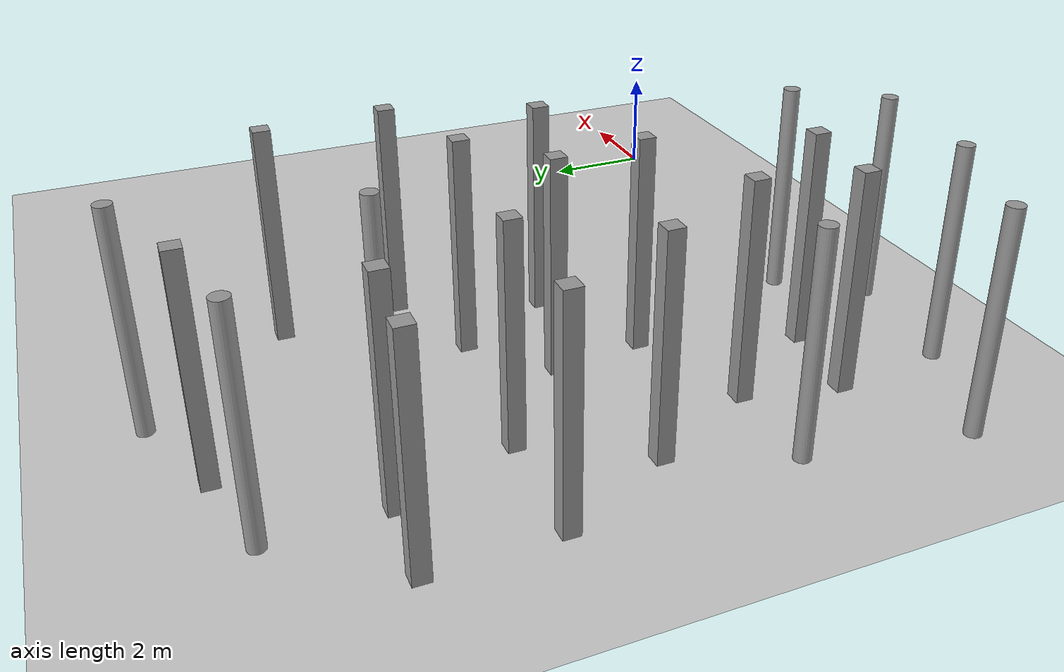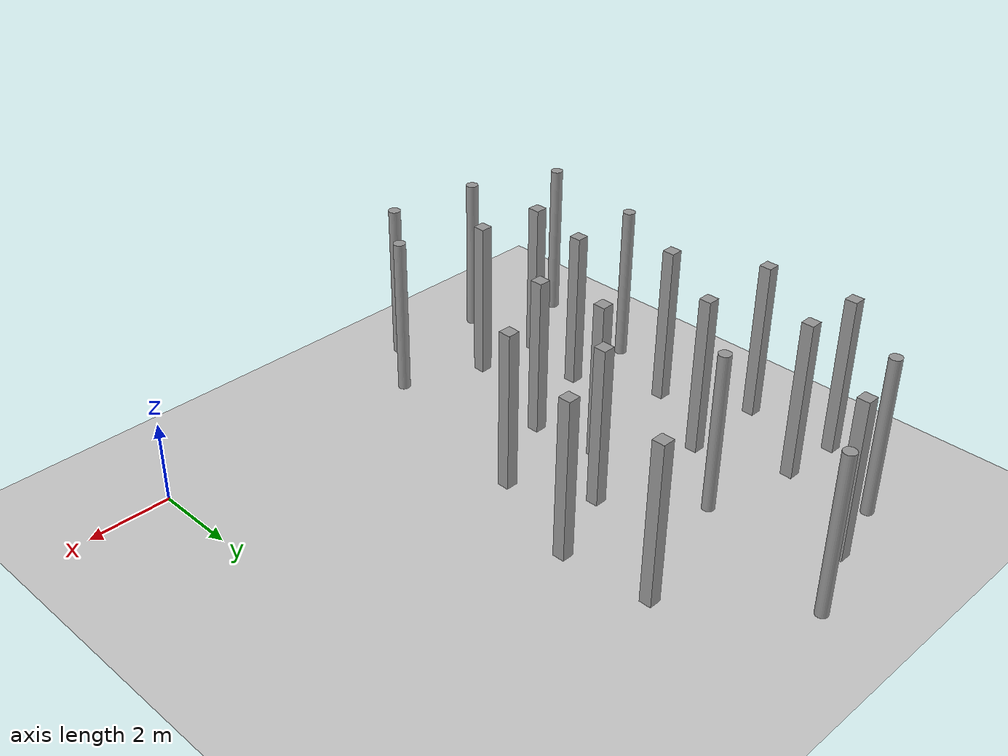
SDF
<sdf version="1.6">
 <world name="default">
  <model name="ground_plane">
   <static>1</static>
   <link name="link">
    <collision name="collision">
     <geometry><plane><normal>0 0 1</normal><size>100 100</size></plane></geometry>
    </collision>
    <visual name="visual">
     <cast_shadows>0</cast_shadows>
     <geometry><plane><normal>0 0 1</normal><size>100 100</size></plane></geometry>
     <material>
      <script><uri>file://media/materials/scripts/gazebo.material</uri><name>Gazebo/Gray</name></script>
     </material>
    </visual>
   </link>
  </model>
  <model name="unit_box_clone_3">
   <link name="link">
    <inertial>
     <mass>1000</mass>
     <inertia><ixx>166.667</ixx><ixy>0</ixy><ixz>0</ixz><iyy>166.667</iyy><iyz>0</iyz><izz>166.667</izz></inertia>
    </inertial>
    <visual name="visual">
     <geometry><box><size>0.3 0.3 4</size></box></geometry>
     <material>
      <script><name>Gazebo/Grey</name><uri>file://media/materials/scripts/gazebo.material</uri></script>
      <shader type="vertex"><normal_map>__default__</normal_map></shader>
      <ambient>0.3 0.3 0.3 1</ambient>
      <diffuse>0.7 0.7 0.7 1</diffuse>
      <specular>0.01 0.01 0.01 1</specular>
      <emissive>0 0 0 1</emissive>
     </material>
    </visual>
    <collision name="collision">
     <geometry><box><size>0.3 0.3 4</size></box></geometry>
     <surface>
      <friction>
       <ode><mu>1</mu><mu2>1</mu2><fdir1>0 0 0</fdir1><slip1>0</slip1><slip2>0</slip2></ode>
       <torsional>
        <coefficient>1</coefficient>
        <patch_radius>0</patch_radius>
        <surface_radius>0</surface_radius>
        <use_patch_radius>1</use_patch_radius>
        <ode><slip>0</slip></ode>
       </torsional>
      </friction>
      <bounce><restitution_coefficient>0</restitution_coefficient><threshold>1e+06</threshold></bounce>
      <contact>
       <collide_without_contact>0</collide_without_contact>
       <collide_without_contact_bitmask>1</collide_without_contact_bitmask>
       <collide_bitmask>1</collide_bitmask>
       <ode>
        <soft_cfm>0</soft_cfm>
        <soft_erp>0.2</soft_erp>
        <kp>1e+13</kp>
        <kd>1</kd>
        <max_vel>0.01</max_vel>
        <min_depth>0</min_depth>
       </ode>
       <bullet>
        <split_impulse>1</split_impulse>
        <split_impulse_penetration_threshold>-0.01</split_impulse_penetration_threshold>
        <soft_cfm>0</soft_cfm>
        <soft_erp>0.2</soft_erp>
        <kp>1e+13</kp>
        <kd>1</kd>
       </bullet>
      </contact>
     </surface>
    </collision>
   </link>
   <static>0</static>
   <pose>-9.81575 6.97351 2.00001 4.7e-05 5.2e-05 -0.001996</pose>
  </model>
  <model name="unit_box_clone_4">
   <link name="link">
    <inertial>
     <mass>1000</mass>
     <inertia><ixx>166.667</ixx><ixy>0</ixy><ixz>0</ixz><iyy>166.667</iyy><iyz>0</iyz><izz>166.667</izz></inertia>
    </inertial>
    <visual name="visual">
     <geometry><box><size>0.3 0.3 4</size></box></geometry>
     <material>
      <script><name>Gazebo/Grey</name><uri>file://media/materials/scripts/gazebo.material</uri></script>
      <shader type="vertex"><normal_map>__default__</normal_map></shader>
      <ambient>0.3 0.3 0.3 1</ambient>
      <diffuse>0.7 0.7 0.7 1</diffuse>
      <specular>0.01 0.01 0.01 1</specular>
      <emissive>0 0 0 1</emissive>
     </material>
    </visual>
    <collision name="collision">
     <geometry><box><size>0.3 0.3 4</size></box></geometry>
     <surface>
      <friction>
       <ode><mu>1</mu><mu2>1</mu2><fdir1>0 0 0</fdir1><slip1>0</slip1><slip2>0</slip2></ode>
       <torsional>
        <coefficient>1</coefficient>
        <patch_radius>0</patch_radius>
        <surface_radius>0</surface_radius>
        <use_patch_radius>1</use_patch_radius>
        <ode><slip>0</slip></ode>
       </torsional>
      </friction>
      <bounce><restitution_coefficient>0</restitution_coefficient><threshold>1e+06</threshold></bounce>
      <contact>
       <collide_without_contact>0</collide_without_contact>
       <collide_without_contact_bitmask>1</collide_without_contact_bitmask>
       <collide_bitmask>1</collide_bitmask>
       <ode>
        <soft_cfm>0</soft_cfm>
        <soft_erp>0.2</soft_erp>
        <kp>1e+13</kp>
        <kd>1</kd>
        <max_vel>0.01</max_vel>
        <min_depth>0</min_depth>
       </ode>
       <bullet>
        <split_impulse>1</split_impulse>
        <split_impulse_penetration_threshold>-0.01</split_impulse_penetration_threshold>
        <soft_cfm>0</soft_cfm>
        <soft_erp>0.2</soft_erp>
        <kp>1e+13</kp>
        <kd>1</kd>
       </bullet>
      </contact>
     </surface>
    </collision>
   </link>
   <static>0</static>
   <pose>-12.0641 9.20916 2.00001 -2e-06 -4.1e-05 -0.0015</pose>
  </model>
  <model name="unit_box_clone_8">
   <link name="link">
    <inertial>
     <mass>1000</mass>
     <inertia><ixx>166.667</ixx><ixy>0</ixy><ixz>0</ixz><iyy>166.667</iyy><iyz>0</iyz><izz>166.667</izz></inertia>
    </inertial>
    <visual name="visual">
     <geometry><box><size>0.3 0.3 4</size></box></geometry>
     <material>
      <script><name>Gazebo/Grey</name><uri>file://media/materials/scripts/gazebo.material</uri></script>
      <shader type="vertex"><normal_map>__default__</normal_map></shader>
      <ambient>0.3 0.3 0.3 1</ambient>
      <diffuse>0.7 0.7 0.7 1</diffuse>
      <specular>0.01 0.01 0.01 1</specular>
      <emissive>0 0 0 1</emissive>
     </material>
    </visual>
    <collision name="collision">
     <geometry><box><size>0.3 0.3 4</size></box></geometry>
     <surface>
      <friction>
       <ode><mu>1</mu><mu2>1</mu2><fdir1>0 0 0</fdir1><slip1>0</slip1><slip2>0</slip2></ode>
       <torsional>
        <coefficient>1</coefficient>
        <patch_radius>0</patch_radius>
        <surface_radius>0</surface_radius>
        <use_patch_radius>1</use_patch_radius>
        <ode><slip>0</slip></ode>
       </torsional>
      </friction>
      <bounce><restitution_coefficient>0</restitution_coefficient><threshold>1e+06</threshold></bounce>
      <contact>
       <collide_without_contact>0</collide_without_contact>
       <collide_without_contact_bitmask>1</collide_without_contact_bitmask>
       <collide_bitmask>1</collide_bitmask>
       <ode>
        <soft_cfm>0</soft_cfm>
        <soft_erp>0.2</soft_erp>
        <kp>1e+13</kp>
        <kd>1</kd>
        <max_vel>0.01</max_vel>
        <min_depth>0</min_depth>
       </ode>
       <bullet>
        <split_impulse>1</split_impulse>
        <split_impulse_penetration_threshold>-0.01</split_impulse_penetration_threshold>
        <soft_cfm>0</soft_cfm>
        <soft_erp>0.2</soft_erp>
        <kp>1e+13</kp>
        <kd>1</kd>
       </bullet>
      </contact>
     </surface>
    </collision>
   </link>
   <static>0</static>
   <pose>-6.68892 6.67579 2 -8e-06 -1.6e-05 -0.000352</pose>
  </model>
  <model name="unit_box_clone_9">
   <link name="link">
    <inertial>
     <mass>1000</mass>
     <inertia><ixx>166.667</ixx><ixy>0</ixy><ixz>0</ixz><iyy>166.667</iyy><iyz>0</iyz><izz>166.667</izz></inertia>
    </inertial>
    <visual name="visual">
     <geometry><box><size>0.3 0.3 4</size></box></geometry>
     <material>
      <script><name>Gazebo/Grey</name><uri>file://media/materials/scripts/gazebo.material</uri></script>
      <shader type="vertex"><normal_map>__default__</normal_map></shader>
      <ambient>0.3 0.3 0.3 1</ambient>
      <diffuse>0.7 0.7 0.7 1</diffuse>
      <specular>0.01 0.01 0.01 1</specular>
      <emissive>0 0 0 1</emissive>
     </material>
    </visual>
    <collision name="collision">
     <geometry><box><size>0.3 0.3 4</size></box></geometry>
     <surface>
      <friction>
       <ode><mu>1</mu><mu2>1</mu2><fdir1>0 0 0</fdir1><slip1>0</slip1><slip2>0</slip2></ode>
       <torsional>
        <coefficient>1</coefficient>
        <patch_radius>0</patch_radius>
        <surface_radius>0</surface_radius>
        <use_patch_radius>1</use_patch_radius>
        <ode><slip>0</slip></ode>
       </torsional>
      </friction>
      <bounce><restitution_coefficient>0</restitution_coefficient><threshold>1e+06</threshold></bounce>
      <contact>
       <collide_without_contact>0</collide_without_contact>
       <collide_without_contact_bitmask>1</collide_without_contact_bitmask>
       <collide_bitmask>1</collide_bitmask>
       <ode>
        <soft_cfm>0</soft_cfm>
        <soft_erp>0.2</soft_erp>
        <kp>1e+13</kp>
        <kd>1</kd>
        <max_vel>0.01</max_vel>
        <min_depth>0</min_depth>
       </ode>
       <bullet>
        <split_impulse>1</split_impulse>
        <split_impulse_penetration_threshold>-0.01</split_impulse_penetration_threshold>
        <soft_cfm>0</soft_cfm>
        <soft_erp>0.2</soft_erp>
        <kp>1e+13</kp>
        <kd>1</kd>
       </bullet>
      </contact>
     </surface>
    </collision>
   </link>
   <static>0</static>
   <pose>-8.00889 5.50015 2 0 -0 -0.003801</pose>
  </model>
  <model name="unit_box_clone_10">
   <link name="link">
    <inertial>
     <mass>1000</mass>
     <inertia><ixx>166.667</ixx><ixy>0</ixy><ixz>0</ixz><iyy>166.667</iyy><iyz>0</iyz><izz>166.667</izz></inertia>
    </inertial>
    <visual name="visual">
     <geometry><box><size>0.3 0.3 4</size></box></geometry>
     <material>
      <script><name>Gazebo/Grey</name><uri>file://media/materials/scripts/gazebo.material</uri></script>
      <shader type="vertex"><normal_map>__default__</normal_map></shader>
      <ambient>0.3 0.3 0.3 1</ambient>
      <diffuse>0.7 0.7 0.7 1</diffuse>
      <specular>0.01 0.01 0.01 1</specular>
      <emissive>0 0 0 1</emissive>
     </material>
    </visual>
    <collision name="collision">
     <geometry><box><size>0.3 0.3 4</size></box></geometry>
     <surface>
      <friction>
       <ode><mu>1</mu><mu2>1</mu2><fdir1>0 0 0</fdir1><slip1>0</slip1><slip2>0</slip2></ode>
       <torsional>
        <coefficient>1</coefficient>
        <patch_radius>0</patch_radius>
        <surface_radius>0</surface_radius>
        <use_patch_radius>1</use_patch_radius>
        <ode><slip>0</slip></ode>
       </torsional>
      </friction>
      <bounce><restitution_coefficient>0</restitution_coefficient><threshold>1e+06</threshold></bounce>
      <contact>
       <collide_without_contact>0</collide_without_contact>
       <collide_without_contact_bitmask>1</collide_without_contact_bitmask>
       <collide_bitmask>1</collide_bitmask>
       <ode>
        <soft_cfm>0</soft_cfm>
        <soft_erp>0.2</soft_erp>
        <kp>1e+13</kp>
        <kd>1</kd>
        <max_vel>0.01</max_vel>
        <min_depth>0</min_depth>
       </ode>
       <bullet>
        <split_impulse>1</split_impulse>
        <split_impulse_penetration_threshold>-0.01</split_impulse_penetration_threshold>
        <soft_cfm>0</soft_cfm>
        <soft_erp>0.2</soft_erp>
        <kp>1e+13</kp>
        <kd>1</kd>
       </bullet>
      </contact>
     </surface>
    </collision>
   </link>
   <static>0</static>
   <pose>-8.91735 11.4995 2 3e-06 1e-06 -0.003851</pose>
  </model>
  <model name="unit_box_clone_11">
   <link name="link">
    <inertial>
     <mass>1000</mass>
     <inertia><ixx>166.667</ixx><ixy>0</ixy><ixz>0</ixz><iyy>166.667</iyy><iyz>0</iyz><izz>166.667</izz></inertia>
    </inertial>
    <visual name="visual">
     <geometry><box><size>0.3 0.3 4</size></box></geometry>
     <material>
      <script><name>Gazebo/Grey</name><uri>file://media/materials/scripts/gazebo.material</uri></script>
      <shader type="vertex"><normal_map>__default__</normal_map></shader>
      <ambient>0.3 0.3 0.3 1</ambient>
      <diffuse>0.7 0.7 0.7 1</diffuse>
      <specular>0.01 0.01 0.01 1</specular>
      <emissive>0 0 0 1</emissive>
     </material>
    </visual>
    <collision name="collision">
     <geometry><box><size>0.3 0.3 4</size></box></geometry>
     <surface>
      <friction>
       <ode><mu>1</mu><mu2>1</mu2><fdir1>0 0 0</fdir1><slip1>0</slip1><slip2>0</slip2></ode>
       <torsional>
        <coefficient>1</coefficient>
        <patch_radius>0</patch_radius>
        <surface_radius>0</surface_radius>
        <use_patch_radius>1</use_patch_radius>
        <ode><slip>0</slip></ode>
       </torsional>
      </friction>
      <bounce><restitution_coefficient>0</restitution_coefficient><threshold>1e+06</threshold></bounce>
      <contact>
       <collide_without_contact>0</collide_without_contact>
       <collide_without_contact_bitmask>1</collide_without_contact_bitmask>
       <collide_bitmask>1</collide_bitmask>
       <ode>
        <soft_cfm>0</soft_cfm>
        <soft_erp>0.2</soft_erp>
        <kp>1e+13</kp>
        <kd>1</kd>
        <max_vel>0.01</max_vel>
        <min_depth>0</min_depth>
       </ode>
       <bullet>
        <split_impulse>1</split_impulse>
        <split_impulse_penetration_threshold>-0.01</split_impulse_penetration_threshold>
        <soft_cfm>0</soft_cfm>
        <soft_erp>0.2</soft_erp>
        <kp>1e+13</kp>
        <kd>1</kd>
       </bullet>
      </contact>
     </surface>
    </collision>
   </link>
   <static>0</static>
   <pose>-10.559 9.10965 2 0 5e-06 0.004017</pose>
  </model>
  <model name="unit_box_clone_13">
   <link name="link">
    <inertial>
     <mass>1000</mass>
     <inertia><ixx>166.667</ixx><ixy>0</ixy><ixz>0</ixz><iyy>166.667</iyy><iyz>0</iyz><izz>166.667</izz></inertia>
    </inertial>
    <visual name="visual">
     <geometry><box><size>0.3 0.3 4</size></box></geometry>
     <material>
      <script><name>Gazebo/Grey</name><uri>file://media/materials/scripts/gazebo.material</uri></script>
      <shader type="vertex"><normal_map>__default__</normal_map></shader>
      <ambient>0.3 0.3 0.3 1</ambient>
      <diffuse>0.7 0.7 0.7 1</diffuse>
      <specular>0.01 0.01 0.01 1</specular>
      <emissive>0 0 0 1</emissive>
     </material>
    </visual>
    <collision name="collision">
     <geometry><box><size>0.3 0.3 4</size></box></geometry>
     <surface>
      <friction>
       <ode><mu>1</mu><mu2>1</mu2><fdir1>0 0 0</fdir1><slip1>0</slip1><slip2>0</slip2></ode>
       <torsional>
        <coefficient>1</coefficient>
        <patch_radius>0</patch_radius>
        <surface_radius>0</surface_radius>
        <use_patch_radius>1</use_patch_radius>
        <ode><slip>0</slip></ode>
       </torsional>
      </friction>
      <bounce><restitution_coefficient>0</restitution_coefficient><threshold>1e+06</threshold></bounce>
      <contact>
       <collide_without_contact>0</collide_without_contact>
       <collide_without_contact_bitmask>1</collide_without_contact_bitmask>
       <collide_bitmask>1</collide_bitmask>
       <ode>
        <soft_cfm>0</soft_cfm>
        <soft_erp>0.2</soft_erp>
        <kp>1e+13</kp>
        <kd>1</kd>
        <max_vel>0.01</max_vel>
        <min_depth>0</min_depth>
       </ode>
       <bullet>
        <split_impulse>1</split_impulse>
        <split_impulse_penetration_threshold>-0.01</split_impulse_penetration_threshold>
        <soft_cfm>0</soft_cfm>
        <soft_erp>0.2</soft_erp>
        <kp>1e+13</kp>
        <kd>1</kd>
       </bullet>
      </contact>
     </surface>
    </collision>
   </link>
   <static>0</static>
   <pose>-10.0001 3.0001 2 -5e-06 5e-06 -0.001679</pose>
  </model>
  <model name="unit_box_clone_14">
   <link name="link">
    <inertial>
     <mass>1000</mass>
     <inertia><ixx>166.667</ixx><ixy>0</ixy><ixz>0</ixz><iyy>166.667</iyy><iyz>0</iyz><izz>166.667</izz></inertia>
    </inertial>
    <visual name="visual">
     <geometry><box><size>0.3 0.3 4</size></box></geometry>
     <material>
      <script><name>Gazebo/Grey</name><uri>file://media/materials/scripts/gazebo.material</uri></script>
      <shader type="vertex"><normal_map>__default__</normal_map></shader>
      <ambient>0.3 0.3 0.3 1</ambient>
      <diffuse>0.7 0.7 0.7 1</diffuse>
      <specular>0.01 0.01 0.01 1</specular>
      <emissive>0 0 0 1</emissive>
     </material>
    </visual>
    <collision name="collision">
     <geometry><box><size>0.3 0.3 4</size></box></geometry>
     <surface>
      <friction>
       <ode><mu>1</mu><mu2>1</mu2><fdir1>0 0 0</fdir1><slip1>0</slip1><slip2>0</slip2></ode>
       <torsional>
        <coefficient>1</coefficient>
        <patch_radius>0</patch_radius>
        <surface_radius>0</surface_radius>
        <use_patch_radius>1</use_patch_radius>
        <ode><slip>0</slip></ode>
       </torsional>
      </friction>
      <bounce><restitution_coefficient>0</restitution_coefficient><threshold>1e+06</threshold></bounce>
      <contact>
       <collide_without_contact>0</collide_without_contact>
       <collide_without_contact_bitmask>1</collide_without_contact_bitmask>
       <collide_bitmask>1</collide_bitmask>
       <ode>
        <soft_cfm>0</soft_cfm>
        <soft_erp>0.2</soft_erp>
        <kp>1e+13</kp>
        <kd>1</kd>
        <max_vel>0.01</max_vel>
        <min_depth>0</min_depth>
       </ode>
       <bullet>
        <split_impulse>1</split_impulse>
        <split_impulse_penetration_threshold>-0.01</split_impulse_penetration_threshold>
        <soft_cfm>0</soft_cfm>
        <soft_erp>0.2</soft_erp>
        <kp>1e+13</kp>
        <kd>1</kd>
       </bullet>
      </contact>
     </surface>
    </collision>
   </link>
   <static>0</static>
   <pose>-12 7.00014 2.00001 -1.8e-05 -3.9e-05 0.000878</pose>
  </model>
  <model name="unit_box_clone_15">
   <link name="link">
    <inertial>
     <mass>1000</mass>
     <inertia><ixx>166.667</ixx><ixy>0</ixy><ixz>0</ixz><iyy>166.667</iyy><iyz>0</iyz><izz>166.667</izz></inertia>
    </inertial>
    <visual name="visual">
     <geometry><box><size>0.3 0.3 4</size></box></geometry>
     <material>
      <script><name>Gazebo/Grey</name><uri>file://media/materials/scripts/gazebo.material</uri></script>
      <shader type="vertex"><normal_map>__default__</normal_map></shader>
      <ambient>0.3 0.3 0.3 1</ambient>
      <diffuse>0.7 0.7 0.7 1</diffuse>
      <specular>0.01 0.01 0.01 1</specular>
      <emissive>0 0 0 1</emissive>
     </material>
    </visual>
    <collision name="collision">
     <geometry><box><size>0.3 0.3 4</size></box></geometry>
     <surface>
      <friction>
       <ode><mu>1</mu><mu2>1</mu2><fdir1>0 0 0</fdir1><slip1>0</slip1><slip2>0</slip2></ode>
       <torsional>
        <coefficient>1</coefficient>
        <patch_radius>0</patch_radius>
        <surface_radius>0</surface_radius>
        <use_patch_radius>1</use_patch_radius>
        <ode><slip>0</slip></ode>
       </torsional>
      </friction>
      <bounce><restitution_coefficient>0</restitution_coefficient><threshold>1e+06</threshold></bounce>
      <contact>
       <collide_without_contact>0</collide_without_contact>
       <collide_without_contact_bitmask>1</collide_without_contact_bitmask>
       <collide_bitmask>1</collide_bitmask>
       <ode>
        <soft_cfm>0</soft_cfm>
        <soft_erp>0.2</soft_erp>
        <kp>1e+13</kp>
        <kd>1</kd>
        <max_vel>0.01</max_vel>
        <min_depth>0</min_depth>
       </ode>
       <bullet>
        <split_impulse>1</split_impulse>
        <split_impulse_penetration_threshold>-0.01</split_impulse_penetration_threshold>
        <soft_cfm>0</soft_cfm>
        <soft_erp>0.2</soft_erp>
        <kp>1e+13</kp>
        <kd>1</kd>
       </bullet>
      </contact>
     </surface>
    </collision>
   </link>
   <static>0</static>
   <pose>-8.74152 1.04876 2 -0 -1e-06 0.002214</pose>
  </model>
  <model name="unit_box_clone_16">
   <link name="link">
    <inertial>
     <mass>1000</mass>
     <inertia><ixx>166.667</ixx><ixy>0</ixy><ixz>0</ixz><iyy>166.667</iyy><iyz>0</iyz><izz>166.667</izz></inertia>
    </inertial>
    <visual name="visual">
     <geometry><box><size>0.3 0.3 4</size></box></geometry>
     <material>
      <script><name>Gazebo/Grey</name><uri>file://media/materials/scripts/gazebo.material</uri></script>
      <shader type="vertex"><normal_map>__default__</normal_map></shader>
      <ambient>0.3 0.3 0.3 1</ambient>
      <diffuse>0.7 0.7 0.7 1</diffuse>
      <specular>0.01 0.01 0.01 1</specular>
      <emissive>0 0 0 1</emissive>
     </material>
    </visual>
    <collision name="collision">
     <geometry><box><size>0.3 0.3 4</size></box></geometry>
     <surface>
      <friction>
       <ode><mu>1</mu><mu2>1</mu2><fdir1>0 0 0</fdir1><slip1>0</slip1><slip2>0</slip2></ode>
       <torsional>
        <coefficient>1</coefficient>
        <patch_radius>0</patch_radius>
        <surface_radius>0</surface_radius>
        <use_patch_radius>1</use_patch_radius>
        <ode><slip>0</slip></ode>
       </torsional>
      </friction>
      <bounce><restitution_coefficient>0</restitution_coefficient><threshold>1e+06</threshold></bounce>
      <contact>
       <collide_without_contact>0</collide_without_contact>
       <collide_without_contact_bitmask>1</collide_without_contact_bitmask>
       <collide_bitmask>1</collide_bitmask>
       <ode>
        <soft_cfm>0</soft_cfm>
        <soft_erp>0.2</soft_erp>
        <kp>1e+13</kp>
        <kd>1</kd>
        <max_vel>0.01</max_vel>
        <min_depth>0</min_depth>
       </ode>
       <bullet>
        <split_impulse>1</split_impulse>
        <split_impulse_penetration_threshold>-0.01</split_impulse_penetration_threshold>
        <soft_cfm>0</soft_cfm>
        <soft_erp>0.2</soft_erp>
        <kp>1e+13</kp>
        <kd>1</kd>
       </bullet>
      </contact>
     </surface>
    </collision>
   </link>
   <static>0</static>
   <pose>-11 5.00014 2.00001 -1.8e-05 -3.9e-05 0.000878</pose>
  </model>
  <model name="unit_box_clone_18">
   <link name="link">
    <inertial>
     <mass>1000</mass>
     <inertia><ixx>166.667</ixx><ixy>0</ixy><ixz>0</ixz><iyy>166.667</iyy><iyz>0</iyz><izz>166.667</izz></inertia>
    </inertial>
    <visual name="visual">
     <geometry><box><size>0.3 0.3 4</size></box></geometry>
     <material>
      <script><name>Gazebo/Grey</name><uri>file://media/materials/scripts/gazebo.material</uri></script>
      <shader type="vertex"><normal_map>__default__</normal_map></shader>
      <ambient>0.3 0.3 0.3 1</ambient>
      <diffuse>0.7 0.7 0.7 1</diffuse>
      <specular>0.01 0.01 0.01 1</specular>
      <emissive>0 0 0 1</emissive>
     </material>
    </visual>
    <collision name="collision">
     <geometry><box><size>0.3 0.3 4</size></box></geometry>
     <surface>
      <friction>
       <ode><mu>1</mu><mu2>1</mu2><fdir1>0 0 0</fdir1><slip1>0</slip1><slip2>0</slip2></ode>
       <torsional>
        <coefficient>1</coefficient>
        <patch_radius>0</patch_radius>
        <surface_radius>0</surface_radius>
        <use_patch_radius>1</use_patch_radius>
        <ode><slip>0</slip></ode>
       </torsional>
      </friction>
      <bounce><restitution_coefficient>0</restitution_coefficient><threshold>1e+06</threshold></bounce>
      <contact>
       <collide_without_contact>0</collide_without_contact>
       <collide_without_contact_bitmask>1</collide_without_contact_bitmask>
       <collide_bitmask>1</collide_bitmask>
       <ode>
        <soft_cfm>0</soft_cfm>
        <soft_erp>0.2</soft_erp>
        <kp>1e+13</kp>
        <kd>1</kd>
        <max_vel>0.01</max_vel>
        <min_depth>0</min_depth>
       </ode>
       <bullet>
        <split_impulse>1</split_impulse>
        <split_impulse_penetration_threshold>-0.01</split_impulse_penetration_threshold>
        <soft_cfm>0</soft_cfm>
        <soft_erp>0.2</soft_erp>
        <kp>1e+13</kp>
        <kd>1</kd>
       </bullet>
      </contact>
     </surface>
    </collision>
   </link>
   <static>0</static>
   <pose>-5.73006 4.87583 2 -1.4e-05 -1e-06 0.00022</pose>
  </model>
  <model name="unit_box_clone_23">
   <link name="link">
    <inertial>
     <mass>1000</mass>
     <inertia><ixx>166.667</ixx><ixy>0</ixy><ixz>0</ixz><iyy>166.667</iyy><iyz>0</iyz><izz>166.667</izz></inertia>
    </inertial>
    <visual name="visual">
     <geometry><box><size>0.3 0.3 4</size></box></geometry>
     <material>
      <script><name>Gazebo/Grey</name><uri>file://media/materials/scripts/gazebo.material</uri></script>
      <shader type="vertex"><normal_map>__default__</normal_map></shader>
      <ambient>0.3 0.3 0.3 1</ambient>
      <diffuse>0.7 0.7 0.7 1</diffuse>
      <specular>0.01 0.01 0.01 1</specular>
      <emissive>0 0 0 1</emissive>
     </material>
    </visual>
    <collision name="collision">
     <geometry><box><size>0.3 0.3 4</size></box></geometry>
     <surface>
      <friction>
       <ode><mu>1</mu><mu2>1</mu2><fdir1>0 0 0</fdir1><slip1>0</slip1><slip2>0</slip2></ode>
       <torsional>
        <coefficient>1</coefficient>
        <patch_radius>0</patch_radius>
        <surface_radius>0</surface_radius>
        <use_patch_radius>1</use_patch_radius>
        <ode><slip>0</slip></ode>
       </torsional>
      </friction>
      <bounce><restitution_coefficient>0</restitution_coefficient><threshold>1e+06</threshold></bounce>
      <contact>
       <collide_without_contact>0</collide_without_contact>
       <collide_without_contact_bitmask>1</collide_without_contact_bitmask>
       <collide_bitmask>1</collide_bitmask>
       <ode>
        <soft_cfm>0</soft_cfm>
        <soft_erp>0.2</soft_erp>
        <kp>1e+13</kp>
        <kd>1</kd>
        <max_vel>0.01</max_vel>
        <min_depth>0</min_depth>
       </ode>
       <bullet>
        <split_impulse>1</split_impulse>
        <split_impulse_penetration_threshold>-0.01</split_impulse_penetration_threshold>
        <soft_cfm>0</soft_cfm>
        <soft_erp>0.2</soft_erp>
        <kp>1e+13</kp>
        <kd>1</kd>
       </bullet>
      </contact>
     </surface>
    </collision>
   </link>
   <static>0</static>
   <pose>-5.00227 9.59195 2 0 -2e-06 -0.002832</pose>
  </model>
  <model name="unit_box_clone_24">
   <link name="link">
    <inertial>
     <mass>1000</mass>
     <inertia><ixx>166.667</ixx><ixy>0</ixy><ixz>0</ixz><iyy>166.667</iyy><iyz>0</iyz><izz>166.667</izz></inertia>
    </inertial>
    <visual name="visual">
     <geometry><box><size>0.3 0.3 4</size></box></geometry>
     <material>
      <script><name>Gazebo/Grey</name><uri>file://media/materials/scripts/gazebo.material</uri></script>
      <shader type="vertex"><normal_map>__default__</normal_map></shader>
      <ambient>0.3 0.3 0.3 1</ambient>
      <diffuse>0.7 0.7 0.7 1</diffuse>
      <specular>0.01 0.01 0.01 1</specular>
      <emissive>0 0 0 1</emissive>
     </material>
    </visual>
    <collision name="collision">
     <geometry><box><size>0.3 0.3 4</size></box></geometry>
     <surface>
      <friction>
       <ode><mu>1</mu><mu2>1</mu2><fdir1>0 0 0</fdir1><slip1>0</slip1><slip2>0</slip2></ode>
       <torsional>
        <coefficient>1</coefficient>
        <patch_radius>0</patch_radius>
        <surface_radius>0</surface_radius>
        <use_patch_radius>1</use_patch_radius>
        <ode><slip>0</slip></ode>
       </torsional>
      </friction>
      <bounce><restitution_coefficient>0</restitution_coefficient><threshold>1e+06</threshold></bounce>
      <contact>
       <collide_without_contact>0</collide_without_contact>
       <collide_without_contact_bitmask>1</collide_without_contact_bitmask>
       <collide_bitmask>1</collide_bitmask>
       <ode>
        <soft_cfm>0</soft_cfm>
        <soft_erp>0.2</soft_erp>
        <kp>1e+13</kp>
        <kd>1</kd>
        <max_vel>0.01</max_vel>
        <min_depth>0</min_depth>
       </ode>
       <bullet>
        <split_impulse>1</split_impulse>
        <split_impulse_penetration_threshold>-0.01</split_impulse_penetration_threshold>
        <soft_cfm>0</soft_cfm>
        <soft_erp>0.2</soft_erp>
        <kp>1e+13</kp>
        <kd>1</kd>
       </bullet>
      </contact>
     </surface>
    </collision>
   </link>
   <static>0</static>
   <pose>-4.80948 7.40665 2 2e-06 -1.2e-05 0.001435</pose>
  </model>
  <model name="unit_box_clone_28">
   <link name="link">
    <inertial>
     <mass>1000</mass>
     <inertia><ixx>166.667</ixx><ixy>0</ixy><ixz>0</ixz><iyy>166.667</iyy><iyz>0</iyz><izz>166.667</izz></inertia>
    </inertial>
    <visual name="visual">
     <geometry><box><size>0.3 0.3 4</size></box></geometry>
     <material>
      <script><name>Gazebo/Grey</name><uri>file://media/materials/scripts/gazebo.material</uri></script>
      <shader type="vertex"><normal_map>__default__</normal_map></shader>
      <ambient>0.3 0.3 0.3 1</ambient>
      <diffuse>0.7 0.7 0.7 1</diffuse>
      <specular>0.01 0.01 0.01 1</specular>
      <emissive>0 0 0 1</emissive>
     </material>
    </visual>
    <collision name="collision">
     <geometry><box><size>0.3 0.3 4</size></box></geometry>
     <surface>
      <friction>
       <ode><mu>1</mu><mu2>1</mu2><fdir1>0 0 0</fdir1><slip1>0</slip1><slip2>0</slip2></ode>
       <torsional>
        <coefficient>1</coefficient>
        <patch_radius>0</patch_radius>
        <surface_radius>0</surface_radius>
        <use_patch_radius>1</use_patch_radius>
        <ode><slip>0</slip></ode>
       </torsional>
      </friction>
      <bounce><restitution_coefficient>0</restitution_coefficient><threshold>1e+06</threshold></bounce>
      <contact>
       <collide_without_contact>0</collide_without_contact>
       <collide_without_contact_bitmask>1</collide_without_contact_bitmask>
       <collide_bitmask>1</collide_bitmask>
       <ode>
        <soft_cfm>0</soft_cfm>
        <soft_erp>0.2</soft_erp>
        <kp>1e+13</kp>
        <kd>1</kd>
        <max_vel>0.01</max_vel>
        <min_depth>0</min_depth>
       </ode>
       <bullet>
        <split_impulse>1</split_impulse>
        <split_impulse_penetration_threshold>-0.01</split_impulse_penetration_threshold>
        <soft_cfm>0</soft_cfm>
        <soft_erp>0.2</soft_erp>
        <kp>1e+13</kp>
        <kd>1</kd>
       </bullet>
      </contact>
     </surface>
    </collision>
   </link>
   <static>0</static>
   <pose>-7.80117 3.82478 2 1e-06 7e-06 -0.005516</pose>
  </model>
  <model name="unit_cylinder_clone_1_clone_3">
   <link name="link">
    <inertial>
     <mass>1000</mass>
     <inertia><ixx>145.833</ixx><ixy>0</ixy><ixz>0</ixz><iyy>145.833</iyy><iyz>0</iyz><izz>125</izz></inertia>
    </inertial>
    <visual name="visual">
     <geometry><cylinder><radius>0.15</radius><length>4</length></cylinder></geometry>
     <material>
      <script><name>Gazebo/Grey</name><uri>file://media/materials/scripts/gazebo.material</uri></script>
      <shader type="vertex"><normal_map>__default__</normal_map></shader>
      <ambient>0.3 0.3 0.3 1</ambient>
      <diffuse>0.7 0.7 0.7 1</diffuse>
      <specular>0.01 0.01 0.01 1</specular>
      <emissive>0 0 0 1</emissive>
     </material>
    </visual>
    <collision name="collision">
     <geometry><cylinder><radius>0.15</radius><length>4</length></cylinder></geometry>
     <surface>
      <friction>
       <ode><mu>1</mu><mu2>1</mu2><fdir1>0 0 0</fdir1><slip1>0</slip1><slip2>0</slip2></ode>
       <torsional>
        <coefficient>1</coefficient>
        <patch_radius>0</patch_radius>
        <surface_radius>0</surface_radius>
        <use_patch_radius>1</use_patch_radius>
        <ode><slip>0</slip></ode>
       </torsional>
      </friction>
      <bounce><restitution_coefficient>0</restitution_coefficient><threshold>1e+06</threshold></bounce>
      <contact>
       <collide_without_contact>0</collide_without_contact>
       <collide_without_contact_bitmask>1</collide_without_contact_bitmask>
       <collide_bitmask>1</collide_bitmask>
       <ode>
        <soft_cfm>0</soft_cfm>
        <soft_erp>0.2</soft_erp>
        <kp>1e+13</kp>
        <kd>1</kd>
        <max_vel>0.01</max_vel>
        <min_depth>0</min_depth>
       </ode>
       <bullet>
        <split_impulse>1</split_impulse>
        <split_impulse_penetration_threshold>-0.01</split_impulse_penetration_threshold>
        <soft_cfm>0</soft_cfm>
        <soft_erp>0.2</soft_erp>
        <kp>1e+13</kp>
        <kd>1</kd>
       </bullet>
      </contact>
     </surface>
    </collision>
   </link>
   <static>0</static>
   <pose>-7.82327 -1.09345 1.99998 -1e-06 -1e-06 -0.52827</pose>
  </model>
  <model name="unit_cylinder_clone_1_clone_12">
   <link name="link">
    <inertial>
     <mass>1000</mass>
     <inertia><ixx>145.833</ixx><ixy>0</ixy><ixz>0</ixz><iyy>145.833</iyy><iyz>0</iyz><izz>125</izz></inertia>
    </inertial>
    <visual name="visual">
     <geometry><cylinder><radius>0.15</radius><length>4</length></cylinder></geometry>
     <material>
      <script><name>Gazebo/Grey</name><uri>file://media/materials/scripts/gazebo.material</uri></script>
      <shader type="vertex"><normal_map>__default__</normal_map></shader>
      <ambient>0.3 0.3 0.3 1</ambient>
      <diffuse>0.7 0.7 0.7 1</diffuse>
      <specular>0.01 0.01 0.01 1</specular>
      <emissive>0 0 0 1</emissive>
     </material>
    </visual>
    <collision name="collision">
     <geometry><cylinder><radius>0.15</radius><length>4</length></cylinder></geometry>
     <surface>
      <friction>
       <ode><mu>1</mu><mu2>1</mu2><fdir1>0 0 0</fdir1><slip1>0</slip1><slip2>0</slip2></ode>
       <torsional>
        <coefficient>1</coefficient>
        <patch_radius>0</patch_radius>
        <surface_radius>0</surface_radius>
        <use_patch_radius>1</use_patch_radius>
        <ode><slip>0</slip></ode>
       </torsional>
      </friction>
      <bounce><restitution_coefficient>0</restitution_coefficient><threshold>1e+06</threshold></bounce>
      <contact>
       <collide_without_contact>0</collide_without_contact>
       <collide_without_contact_bitmask>1</collide_without_contact_bitmask>
       <collide_bitmask>1</collide_bitmask>
       <ode>
        <soft_cfm>0</soft_cfm>
        <soft_erp>0.2</soft_erp>
        <kp>1e+13</kp>
        <kd>1</kd>
        <max_vel>0.01</max_vel>
        <min_depth>0</min_depth>
       </ode>
       <bullet>
        <split_impulse>1</split_impulse>
        <split_impulse_penetration_threshold>-0.01</split_impulse_penetration_threshold>
        <soft_cfm>0</soft_cfm>
        <soft_erp>0.2</soft_erp>
        <kp>1e+13</kp>
        <kd>1</kd>
       </bullet>
      </contact>
     </surface>
    </collision>
   </link>
   <static>0</static>
   <pose>-6.75881 0.278571 1.99995 -0.000273 2e-06 -0.78814</pose>
  </model>
  <model name="unit_cylinder_clone_1_clone_14">
   <link name="link">
    <inertial>
     <mass>1000</mass>
     <inertia><ixx>145.833</ixx><ixy>0</ixy><ixz>0</ixz><iyy>145.833</iyy><iyz>0</iyz><izz>125</izz></inertia>
    </inertial>
    <visual name="visual">
     <geometry><cylinder><radius>0.15</radius><length>4</length></cylinder></geometry>
     <material>
      <script><name>Gazebo/Grey</name><uri>file://media/materials/scripts/gazebo.material</uri></script>
      <shader type="vertex"><normal_map>__default__</normal_map></shader>
      <ambient>0.3 0.3 0.3 1</ambient>
      <diffuse>0.7 0.7 0.7 1</diffuse>
      <specular>0.01 0.01 0.01 1</specular>
      <emissive>0 0 0 1</emissive>
     </material>
    </visual>
    <collision name="collision">
     <geometry><cylinder><radius>0.15</radius><length>4</length></cylinder></geometry>
     <surface>
      <friction>
       <ode><mu>1</mu><mu2>1</mu2><fdir1>0 0 0</fdir1><slip1>0</slip1><slip2>0</slip2></ode>
       <torsional>
        <coefficient>1</coefficient>
        <patch_radius>0</patch_radius>
        <surface_radius>0</surface_radius>
        <use_patch_radius>1</use_patch_radius>
        <ode><slip>0</slip></ode>
       </torsional>
      </friction>
      <bounce><restitution_coefficient>0</restitution_coefficient><threshold>1e+06</threshold></bounce>
      <contact>
       <collide_without_contact>0</collide_without_contact>
       <collide_without_contact_bitmask>1</collide_without_contact_bitmask>
       <collide_bitmask>1</collide_bitmask>
       <ode>
        <soft_cfm>0</soft_cfm>
        <soft_erp>0.2</soft_erp>
        <kp>1e+13</kp>
        <kd>1</kd>
        <max_vel>0.01</max_vel>
        <min_depth>0</min_depth>
       </ode>
       <bullet>
        <split_impulse>1</split_impulse>
        <split_impulse_penetration_threshold>-0.01</split_impulse_penetration_threshold>
        <soft_cfm>0</soft_cfm>
        <soft_erp>0.2</soft_erp>
        <kp>1e+13</kp>
        <kd>1</kd>
       </bullet>
      </contact>
     </surface>
    </collision>
   </link>
   <static>0</static>
   <pose>-10.1911 -0.79954 1.99995 -0.000273 1e-06 -0.791175</pose>
  </model>
  <model name="unit_cylinder_clone_1_clone_7_clone_0">
   <link name="link">
    <inertial>
     <mass>1000</mass>
     <inertia><ixx>145.833</ixx><ixy>0</ixy><ixz>0</ixz><iyy>145.833</iyy><iyz>0</iyz><izz>125</izz></inertia>
    </inertial>
    <visual name="visual">
     <geometry><cylinder><radius>0.15</radius><length>4</length></cylinder></geometry>
     <material>
      <script><name>Gazebo/Grey</name><uri>file://media/materials/scripts/gazebo.material</uri></script>
      <shader type="vertex"><normal_map>__default__</normal_map></shader>
      <ambient>0.3 0.3 0.3 1</ambient>
      <diffuse>0.7 0.7 0.7 1</diffuse>
      <specular>0.01 0.01 0.01 1</specular>
      <emissive>0 0 0 1</emissive>
     </material>
    </visual>
    <collision name="collision">
     <geometry><cylinder><radius>0.15</radius><length>4</length></cylinder></geometry>
     <surface>
      <friction>
       <ode><mu>1</mu><mu2>1</mu2><fdir1>0 0 0</fdir1><slip1>0</slip1><slip2>0</slip2></ode>
       <torsional>
        <coefficient>1</coefficient>
        <patch_radius>0</patch_radius>
        <surface_radius>0</surface_radius>
        <use_patch_radius>1</use_patch_radius>
        <ode><slip>0</slip></ode>
       </torsional>
      </friction>
      <bounce><restitution_coefficient>0</restitution_coefficient><threshold>1e+06</threshold></bounce>
      <contact>
       <collide_without_contact>0</collide_without_contact>
       <collide_without_contact_bitmask>1</collide_without_contact_bitmask>
       <collide_bitmask>1</collide_bitmask>
       <ode>
        <soft_cfm>0</soft_cfm>
        <soft_erp>0.2</soft_erp>
        <kp>1e+13</kp>
        <kd>1</kd>
        <max_vel>0.01</max_vel>
        <min_depth>0</min_depth>
       </ode>
       <bullet>
        <split_impulse>1</split_impulse>
        <split_impulse_penetration_threshold>-0.01</split_impulse_penetration_threshold>
        <soft_cfm>0</soft_cfm>
        <soft_erp>0.2</soft_erp>
        <kp>1e+13</kp>
        <kd>1</kd>
       </bullet>
      </contact>
     </surface>
    </collision>
   </link>
   <static>0</static>
   <pose>-7.15007 12.2387 1.99995 -0.000273 2e-06 -0.788003</pose>
  </model>
  <model name="unit_cylinder_clone_1_clone_7_clone_3">
   <link name="link">
    <inertial>
     <mass>1000</mass>
     <inertia><ixx>145.833</ixx><ixy>0</ixy><ixz>0</ixz><iyy>145.833</iyy><iyz>0</iyz><izz>125</izz></inertia>
    </inertial>
    <visual name="visual">
     <geometry><cylinder><radius>0.15</radius><length>4</length></cylinder></geometry>
     <material>
      <script><name>Gazebo/Grey</name><uri>file://media/materials/scripts/gazebo.material</uri></script>
      <shader type="vertex"><normal_map>__default__</normal_map></shader>
      <ambient>0.3 0.3 0.3 1</ambient>
      <diffuse>0.7 0.7 0.7 1</diffuse>
      <specular>0.01 0.01 0.01 1</specular>
      <emissive>0 0 0 1</emissive>
     </material>
    </visual>
    <collision name="collision">
     <geometry><cylinder><radius>0.15</radius><length>4</length></cylinder></geometry>
     <surface>
      <friction>
       <ode><mu>1</mu><mu2>1</mu2><fdir1>0 0 0</fdir1><slip1>0</slip1><slip2>0</slip2></ode>
       <torsional>
        <coefficient>1</coefficient>
        <patch_radius>0</patch_radius>
        <surface_radius>0</surface_radius>
        <use_patch_radius>1</use_patch_radius>
        <ode><slip>0</slip></ode>
       </torsional>
      </friction>
      <bounce><restitution_coefficient>0</restitution_coefficient><threshold>1e+06</threshold></bounce>
      <contact>
       <collide_without_contact>0</collide_without_contact>
       <collide_without_contact_bitmask>1</collide_without_contact_bitmask>
       <collide_bitmask>1</collide_bitmask>
       <ode>
        <soft_cfm>0</soft_cfm>
        <soft_erp>0.2</soft_erp>
        <kp>1e+13</kp>
        <kd>1</kd>
        <max_vel>0.01</max_vel>
        <min_depth>0</min_depth>
       </ode>
       <bullet>
        <split_impulse>1</split_impulse>
        <split_impulse_penetration_threshold>-0.01</split_impulse_penetration_threshold>
        <soft_cfm>0</soft_cfm>
        <soft_erp>0.2</soft_erp>
        <kp>1e+13</kp>
        <kd>1</kd>
       </bullet>
      </contact>
     </surface>
    </collision>
   </link>
   <static>0</static>
   <pose>-12.3496 0.129999 1.99995 -0.000273 2e-06 -0.785557</pose>
  </model>
  <model name="unit_cylinder_clone_1_clone_7_clone_5">
   <link name="link">
    <inertial>
     <mass>1000</mass>
     <inertia><ixx>145.833</ixx><ixy>0</ixy><ixz>0</ixz><iyy>145.833</iyy><iyz>0</iyz><izz>125</izz></inertia>
    </inertial>
    <visual name="visual">
     <geometry><cylinder><radius>0.15</radius><length>4</length></cylinder></geometry>
     <material>
      <script><name>Gazebo/Grey</name><uri>file://media/materials/scripts/gazebo.material</uri></script>
      <shader type="vertex"><normal_map>__default__</normal_map></shader>
      <ambient>0.3 0.3 0.3 1</ambient>
      <diffuse>0.7 0.7 0.7 1</diffuse>
      <specular>0.01 0.01 0.01 1</specular>
      <emissive>0 0 0 1</emissive>
     </material>
    </visual>
    <collision name="collision">
     <geometry><cylinder><radius>0.15</radius><length>4</length></cylinder></geometry>
     <surface>
      <friction>
       <ode><mu>1</mu><mu2>1</mu2><fdir1>0 0 0</fdir1><slip1>0</slip1><slip2>0</slip2></ode>
       <torsional>
        <coefficient>1</coefficient>
        <patch_radius>0</patch_radius>
        <surface_radius>0</surface_radius>
        <use_patch_radius>1</use_patch_radius>
        <ode><slip>0</slip></ode>
       </torsional>
      </friction>
      <bounce><restitution_coefficient>0</restitution_coefficient><threshold>1e+06</threshold></bounce>
      <contact>
       <collide_without_contact>0</collide_without_contact>
       <collide_without_contact_bitmask>1</collide_without_contact_bitmask>
       <collide_bitmask>1</collide_bitmask>
       <ode>
        <soft_cfm>0</soft_cfm>
        <soft_erp>0.2</soft_erp>
        <kp>1e+13</kp>
        <kd>1</kd>
        <max_vel>0.01</max_vel>
        <min_depth>0</min_depth>
       </ode>
       <bullet>
        <split_impulse>1</split_impulse>
        <split_impulse_penetration_threshold>-0.01</split_impulse_penetration_threshold>
        <soft_cfm>0</soft_cfm>
        <soft_erp>0.2</soft_erp>
        <kp>1e+13</kp>
        <kd>1</kd>
       </bullet>
      </contact>
     </surface>
    </collision>
   </link>
   <static>0</static>
   <pose>-10.6073 11.1104 1.99995 -0.000273 2e-06 -0.788003</pose>
  </model>
  <model name="unit_cylinder_clone_1_clone_7_clone_6">
   <link name="link">
    <inertial>
     <mass>1000</mass>
     <inertia><ixx>145.833</ixx><ixy>0</ixy><ixz>0</ixz><iyy>145.833</iyy><iyz>0</iyz><izz>125</izz></inertia>
    </inertial>
    <visual name="visual">
     <geometry><cylinder><radius>0.15</radius><length>4</length></cylinder></geometry>
     <material>
      <script><name>Gazebo/Grey</name><uri>file://media/materials/scripts/gazebo.material</uri></script>
      <shader type="vertex"><normal_map>__default__</normal_map></shader>
      <ambient>0.3 0.3 0.3 1</ambient>
      <diffuse>0.7 0.7 0.7 1</diffuse>
      <specular>0.01 0.01 0.01 1</specular>
      <emissive>0 0 0 1</emissive>
     </material>
    </visual>
    <collision name="collision">
     <geometry><cylinder><radius>0.15</radius><length>4</length></cylinder></geometry>
     <surface>
      <friction>
       <ode><mu>1</mu><mu2>1</mu2><fdir1>0 0 0</fdir1><slip1>0</slip1><slip2>0</slip2></ode>
       <torsional>
        <coefficient>1</coefficient>
        <patch_radius>0</patch_radius>
        <surface_radius>0</surface_radius>
        <use_patch_radius>1</use_patch_radius>
        <ode><slip>0</slip></ode>
       </torsional>
      </friction>
      <bounce><restitution_coefficient>0</restitution_coefficient><threshold>1e+06</threshold></bounce>
      <contact>
       <collide_without_contact>0</collide_without_contact>
       <collide_without_contact_bitmask>1</collide_without_contact_bitmask>
       <collide_bitmask>1</collide_bitmask>
       <ode>
        <soft_cfm>0</soft_cfm>
        <soft_erp>0.2</soft_erp>
        <kp>1e+13</kp>
        <kd>1</kd>
        <max_vel>0.01</max_vel>
        <min_depth>0</min_depth>
       </ode>
       <bullet>
        <split_impulse>1</split_impulse>
        <split_impulse_penetration_threshold>-0.01</split_impulse_penetration_threshold>
        <soft_cfm>0</soft_cfm>
        <soft_erp>0.2</soft_erp>
        <kp>1e+13</kp>
        <kd>1</kd>
       </bullet>
      </contact>
     </surface>
    </collision>
   </link>
   <static>0</static>
   <pose>-8.24575 8.5808 1.99995 -0.000273 2e-06 -0.786772</pose>
  </model>
  <model name="unit_cylinder_clone_1_clone_7_clone_8">
   <link name="link">
    <inertial>
     <mass>1000</mass>
     <inertia><ixx>145.833</ixx><ixy>0</ixy><ixz>0</ixz><iyy>145.833</iyy><iyz>0</iyz><izz>125</izz></inertia>
    </inertial>
    <visual name="visual">
     <geometry><cylinder><radius>0.15</radius><length>4</length></cylinder></geometry>
     <material>
      <script><name>Gazebo/Grey</name><uri>file://media/materials/scripts/gazebo.material</uri></script>
      <shader type="vertex"><normal_map>__default__</normal_map></shader>
      <ambient>0.3 0.3 0.3 1</ambient>
      <diffuse>0.7 0.7 0.7 1</diffuse>
      <specular>0.01 0.01 0.01 1</specular>
      <emissive>0 0 0 1</emissive>
     </material>
    </visual>
    <collision name="collision">
     <geometry><cylinder><radius>0.15</radius><length>4</length></cylinder></geometry>
     <surface>
      <friction>
       <ode><mu>1</mu><mu2>1</mu2><fdir1>0 0 0</fdir1><slip1>0</slip1><slip2>0</slip2></ode>
       <torsional>
        <coefficient>1</coefficient>
        <patch_radius>0</patch_radius>
        <surface_radius>0</surface_radius>
        <use_patch_radius>1</use_patch_radius>
        <ode><slip>0</slip></ode>
       </torsional>
      </friction>
      <bounce><restitution_coefficient>0</restitution_coefficient><threshold>1e+06</threshold></bounce>
      <contact>
       <collide_without_contact>0</collide_without_contact>
       <collide_without_contact_bitmask>1</collide_without_contact_bitmask>
       <collide_bitmask>1</collide_bitmask>
       <ode>
        <soft_cfm>0</soft_cfm>
        <soft_erp>0.2</soft_erp>
        <kp>1e+13</kp>
        <kd>1</kd>
        <max_vel>0.01</max_vel>
        <min_depth>0</min_depth>
       </ode>
       <bullet>
        <split_impulse>1</split_impulse>
        <split_impulse_penetration_threshold>-0.01</split_impulse_penetration_threshold>
        <soft_cfm>0</soft_cfm>
        <soft_erp>0.2</soft_erp>
        <kp>1e+13</kp>
        <kd>1</kd>
       </bullet>
      </contact>
     </surface>
    </collision>
   </link>
   <static>0</static>
   <pose>-11.8394 2.99477 1.99995 -0.000273 2e-06 -0.787991</pose>
  </model>
  <model name="unit_box_clone_27_clone_1">
   <link name="link">
    <inertial>
     <mass>1000</mass>
     <inertia><ixx>166.667</ixx><ixy>0</ixy><ixz>0</ixz><iyy>166.667</iyy><iyz>0</iyz><izz>166.667</izz></inertia>
    </inertial>
    <visual name="visual">
     <geometry><box><size>0.3 0.3 4</size></box></geometry>
     <material>
      <script><name>Gazebo/Grey</name><uri>file://media/materials/scripts/gazebo.material</uri></script>
      <shader type="vertex"><normal_map>__default__</normal_map></shader>
      <ambient>0.3 0.3 0.3 1</ambient>
      <diffuse>0.7 0.7 0.7 1</diffuse>
      <specular>0.01 0.01 0.01 1</specular>
      <emissive>0 0 0 1</emissive>
     </material>
    </visual>
    <collision name="collision">
     <geometry><box><size>0.3 0.3 4</size></box></geometry>
     <surface>
      <friction>
       <ode><mu>1</mu><mu2>1</mu2><fdir1>0 0 0</fdir1><slip1>0</slip1><slip2>0</slip2></ode>
       <torsional>
        <coefficient>1</coefficient>
        <patch_radius>0</patch_radius>
        <surface_radius>0</surface_radius>
        <use_patch_radius>1</use_patch_radius>
        <ode><slip>0</slip></ode>
       </torsional>
      </friction>
      <bounce><restitution_coefficient>0</restitution_coefficient><threshold>1e+06</threshold></bounce>
      <contact>
       <collide_without_contact>0</collide_without_contact>
       <collide_without_contact_bitmask>1</collide_without_contact_bitmask>
       <collide_bitmask>1</collide_bitmask>
       <ode>
        <soft_cfm>0</soft_cfm>
        <soft_erp>0.2</soft_erp>
        <kp>1e+13</kp>
        <kd>1</kd>
        <max_vel>0.01</max_vel>
        <min_depth>0</min_depth>
       </ode>
       <bullet>
        <split_impulse>1</split_impulse>
        <split_impulse_penetration_threshold>-0.01</split_impulse_penetration_threshold>
        <soft_cfm>0</soft_cfm>
        <soft_erp>0.2</soft_erp>
        <kp>1e+13</kp>
        <kd>1</kd>
       </bullet>
      </contact>
     </surface>
    </collision>
   </link>
   <static>0</static>
   <pose>-10.4015 1.28207 2 1.8e-05 -1e-05 -0.008192</pose>
  </model>
 </world>
</sdf>
